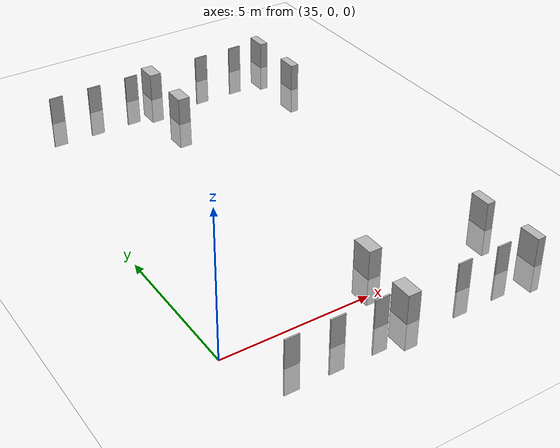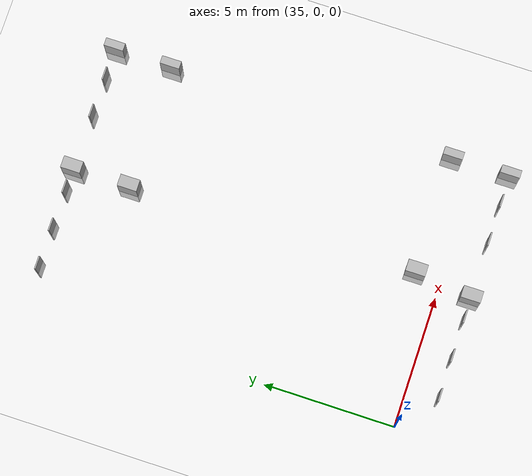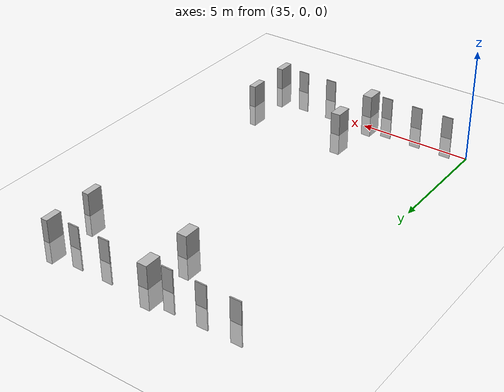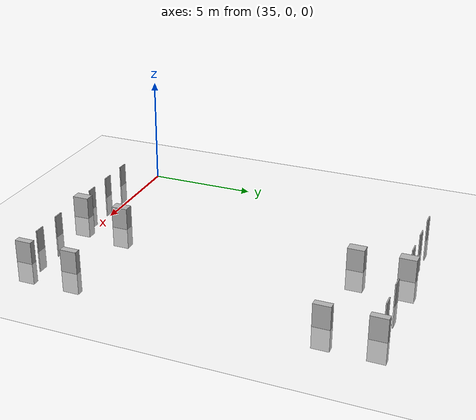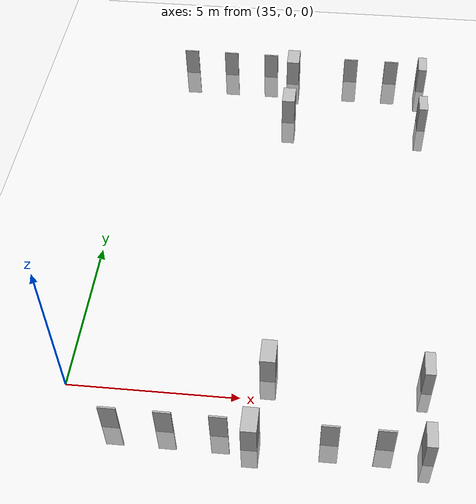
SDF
<sdf version="1.7">
 <world name="simple_corridor">
  <model name="ground_plane">
   <static>true</static>
   <link name="link">
    <collision name="collision">
     <geometry><plane><normal>0 0 1</normal><size>500 500</size></plane></geometry>
    </collision>
    <visual name="visual">
     <geometry><plane><normal>0 0 1</normal><size>500 500</size></plane></geometry>
     <material><ambient>1 1 1 1</ambient><diffuse>1 1 1 1</diffuse></material>
    </visual>
   </link>
  </model>
  <model name="column_large_left_9">
   <static>true</static>
   <pose>40.4 12 0 0 0 0</pose>
   <link name="link">
    <collision name="collision"><geometry><box><size>0.45 0.75 2.0</size></box></geometry></collision>
    <visual name="visual">
     <geometry><box><size>0.45 0.75 2.0</size></box></geometry>
     <material><diffuse>0.7 0.7 0.7 1</diffuse></material>
    </visual>
   </link>
  </model>
  <model name="column_small_left_10">
   <static>true</static>
   <pose>45.2 12 0 0 0 0</pose>
   <link name="link">
    <collision name="collision"><geometry><box><size>0.3 0.75 2.0</size></box></geometry></collision>
    <visual name="visual">
     <geometry><box><size>0.3 0.75 2.0</size></box></geometry>
     <material><diffuse>0.7 0.7 0.7 1</diffuse></material>
    </visual>
   </link>
  </model>
  <model name="column_large_right_9">
   <static>true</static>
   <pose>40.7 1 0 0 0 0</pose>
   <link name="link">
    <collision name="collision"><geometry><box><size>0.45 0.75 2.0</size></box></geometry></collision>
    <visual name="visual">
     <geometry><box><size>0.45 0.75 2.0</size></box></geometry>
     <material><diffuse>0.7 0.7 0.7 1</diffuse></material>
    </visual>
   </link>
  </model>
  <model name="column_small_right_10">
   <static>true</static>
   <pose>45.2 1 0 0 0 0</pose>
   <link name="link">
    <collision name="collision"><geometry><box><size>0.3 0.75 2.0</size></box></geometry></collision>
    <visual name="visual">
     <geometry><box><size>0.3 0.75 2.0</size></box></geometry>
     <material><diffuse>0.7 0.7 0.7 1</diffuse></material>
    </visual>
   </link>
  </model>
  <model name="ban_large_left_9">
   <static>true</static>
   <pose>40.4 14.2 0 0 0 0</pose>
   <link name="link">
    <collision name="collision"><geometry><box><size>0.45 0.75 2.0</size></box></geometry></collision>
    <visual name="visual">
     <geometry><box><size>0.45 0.75 2.0</size></box></geometry>
     <material><diffuse>0.7 0.7 0.7 1</diffuse></material>
    </visual>
   </link>
  </model>
  <model name="ban_small_left_10">
   <static>true</static>
   <pose>45.2 14.2 0 0 0 0</pose>
   <link name="link">
    <collision name="collision"><geometry><box><size>0.3 0.75 2.0</size></box></geometry></collision>
    <visual name="visual">
     <geometry><box><size>0.3 0.75 2.0</size></box></geometry>
     <material><diffuse>0.7 0.7 0.7 1</diffuse></material>
    </visual>
   </link>
  </model>
  <model name="ban_large_right_9">
   <static>true</static>
   <pose>40.4 -1.2 0 0 0 0</pose>
   <link name="link">
    <collision name="collision"><geometry><box><size>0.45 0.75 2.0</size></box></geometry></collision>
    <visual name="visual">
     <geometry><box><size>0.45 0.75 2.0</size></box></geometry>
     <material><diffuse>0.7 0.7 0.7 1</diffuse></material>
    </visual>
   </link>
  </model>
  <model name="ban_small_right_10">
   <static>true</static>
   <pose>45.2 -1.2 0 0 0 0</pose>
   <link name="link">
    <collision name="collision"><geometry><box><size>0.3 0.75 2.0</size></box></geometry></collision>
    <visual name="visual">
     <geometry><box><size>0.3 0.75 2.0</size></box></geometry>
     <material><diffuse>0.7 0.7 0.7 1</diffuse></material>
    </visual>
   </link>
  </model>
  <model name="bar_left_22">
   <static>true</static>
   <pose>36.55 14.2 0 0 0 0</pose>
   <link name="link">
    <collision name="collision"><geometry><box><size>0.5 0.05 2.0</size></box></geometry></collision>
    <visual name="visual">
     <geometry><box><size>0.5 0.05 2.0</size></box></geometry>
     <material><diffuse>0.7 0.7 0.7 1</diffuse></material>
    </visual>
   </link>
  </model>
  <model name="bar_left_23">
   <static>true</static>
   <pose>38.05 14.2 0 0 0 0</pose>
   <link name="link">
    <collision name="collision"><geometry><box><size>0.5 0.05 2.0</size></box></geometry></collision>
    <visual name="visual">
     <geometry><box><size>0.5 0.05 2.0</size></box></geometry>
     <material><diffuse>0.7 0.7 0.7 1</diffuse></material>
    </visual>
   </link>
  </model>
  <model name="bar_left_24">
   <static>true</static>
   <pose>39.55 14.2 0 0 0 0</pose>
   <link name="link">
    <collision name="collision"><geometry><box><size>0.5 0.05 2.0</size></box></geometry></collision>
    <visual name="visual">
     <geometry><box><size>0.5 0.05 2.0</size></box></geometry>
     <material><diffuse>0.7 0.7 0.7 1</diffuse></material>
    </visual>
   </link>
  </model>
  <model name="bar_left_25">
   <static>true</static>
   <pose>42.55 14.2 0 0 0 0</pose>
   <link name="link">
    <collision name="collision"><geometry><box><size>0.5 0.05 2.0</size></box></geometry></collision>
    <visual name="visual">
     <geometry><box><size>0.5 0.05 2.0</size></box></geometry>
     <material><diffuse>0.7 0.7 0.7 1</diffuse></material>
    </visual>
   </link>
  </model>
  <model name="bar_left_26">
   <static>true</static>
   <pose>44.05 14.2 0 0 0 0</pose>
   <link name="link">
    <collision name="collision"><geometry><box><size>0.5 0.05 2.0</size></box></geometry></collision>
    <visual name="visual">
     <geometry><box><size>0.5 0.05 2.0</size></box></geometry>
     <material><diffuse>0.7 0.7 0.7 1</diffuse></material>
    </visual>
   </link>
  </model>
  <model name="bar_right_22">
   <static>true</static>
   <pose>36.55 -1.2 0 0 0 0</pose>
   <link name="link">
    <collision name="collision"><geometry><box><size>0.5 0.05 2.0</size></box></geometry></collision>
    <visual name="visual">
     <geometry><box><size>0.5 0.05 2.0</size></box></geometry>
     <material><diffuse>0.7 0.7 0.7 1</diffuse></material>
    </visual>
   </link>
  </model>
  <model name="bar_right_23">
   <static>true</static>
   <pose>38.05 -1.2 0 0 0 0</pose>
   <link name="link">
    <collision name="collision"><geometry><box><size>0.5 0.05 2.0</size></box></geometry></collision>
    <visual name="visual">
     <geometry><box><size>0.5 0.05 2.0</size></box></geometry>
     <material><diffuse>0.7 0.7 0.7 1</diffuse></material>
    </visual>
   </link>
  </model>
  <model name="bar_right_24">
   <static>true</static>
   <pose>39.55 -1.2 0 0 0 0</pose>
   <link name="link">
    <collision name="collision"><geometry><box><size>0.5 0.05 2.0</size></box></geometry></collision>
    <visual name="visual">
     <geometry><box><size>0.5 0.05 2.0</size></box></geometry>
     <material><diffuse>0.7 0.7 0.7 1</diffuse></material>
    </visual>
   </link>
  </model>
  <model name="bar_right_25">
   <static>true</static>
   <pose>42.55 -1.2 0 0 0 0</pose>
   <link name="link">
    <collision name="collision"><geometry><box><size>0.5 0.05 2.0</size></box></geometry></collision>
    <visual name="visual">
     <geometry><box><size>0.5 0.05 2.0</size></box></geometry>
     <material><diffuse>0.7 0.7 0.7 1</diffuse></material>
    </visual>
   </link>
  </model>
  <model name="bar_right_26">
   <static>true</static>
   <pose>44.05 -1.2 0 0 0 0</pose>
   <link name="link">
    <collision name="collision"><geometry><box><size>0.5 0.05 2.0</size></box></geometry></collision>
    <visual name="visual">
     <geometry><box><size>0.5 0.05 2.0</size></box></geometry>
     <material><diffuse>0.7 0.7 0.7 1</diffuse></material>
    </visual>
   </link>
  </model>
 </world>
</sdf>
